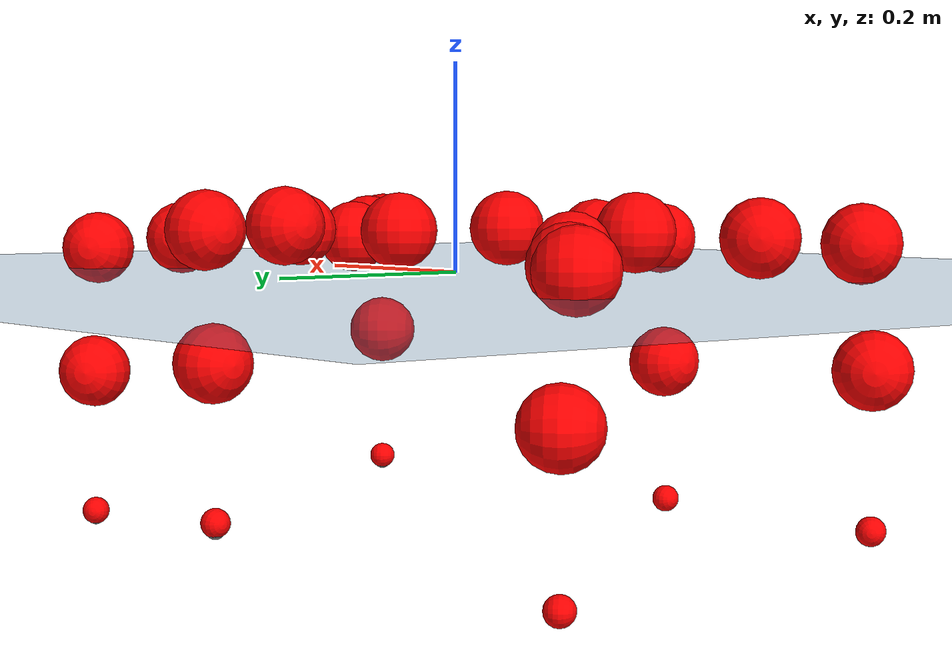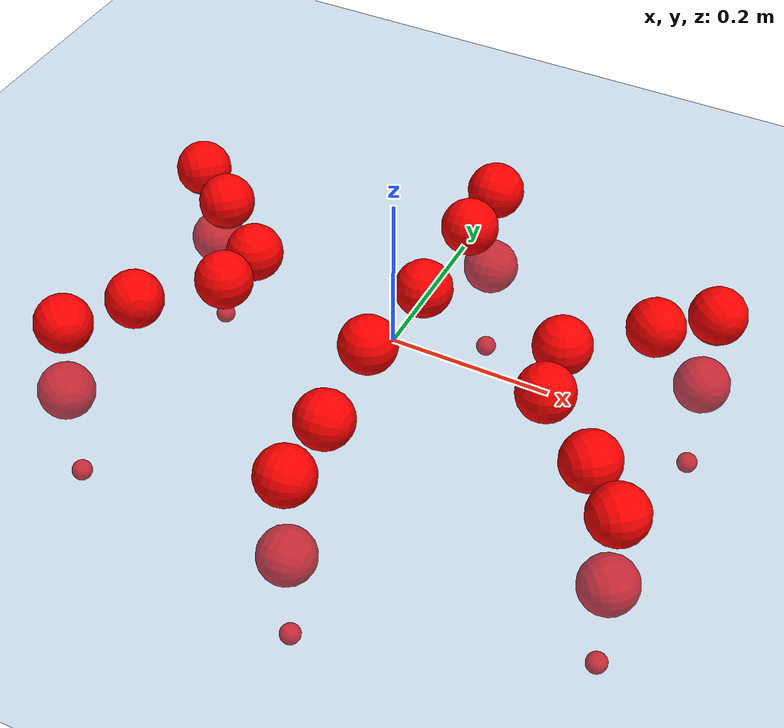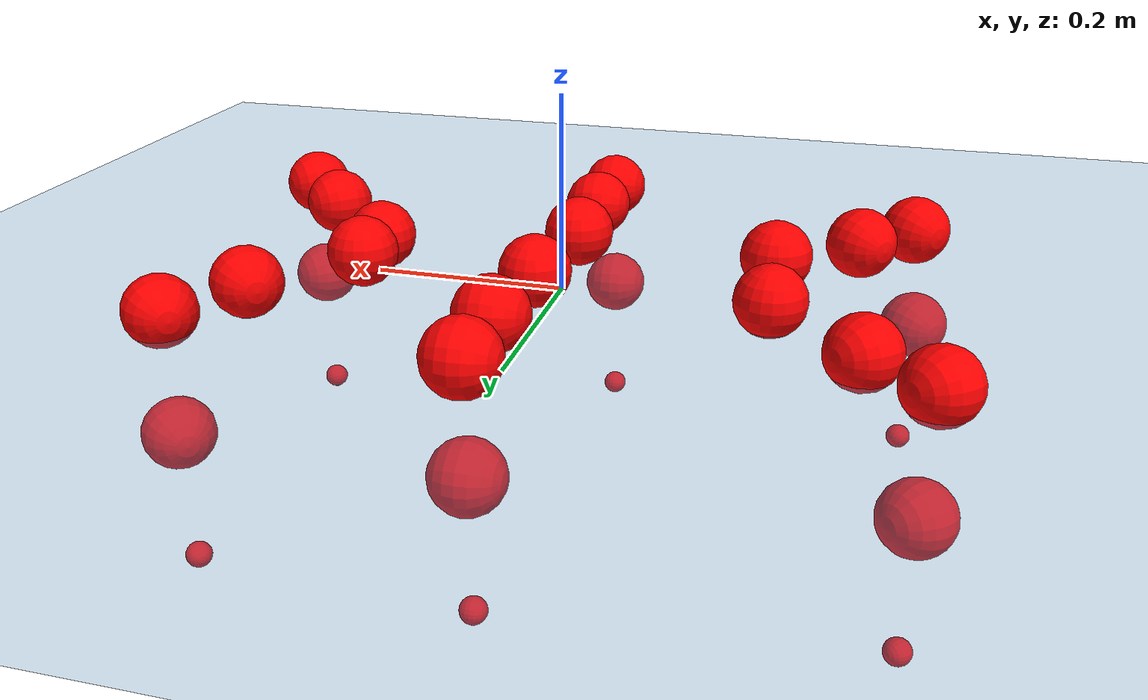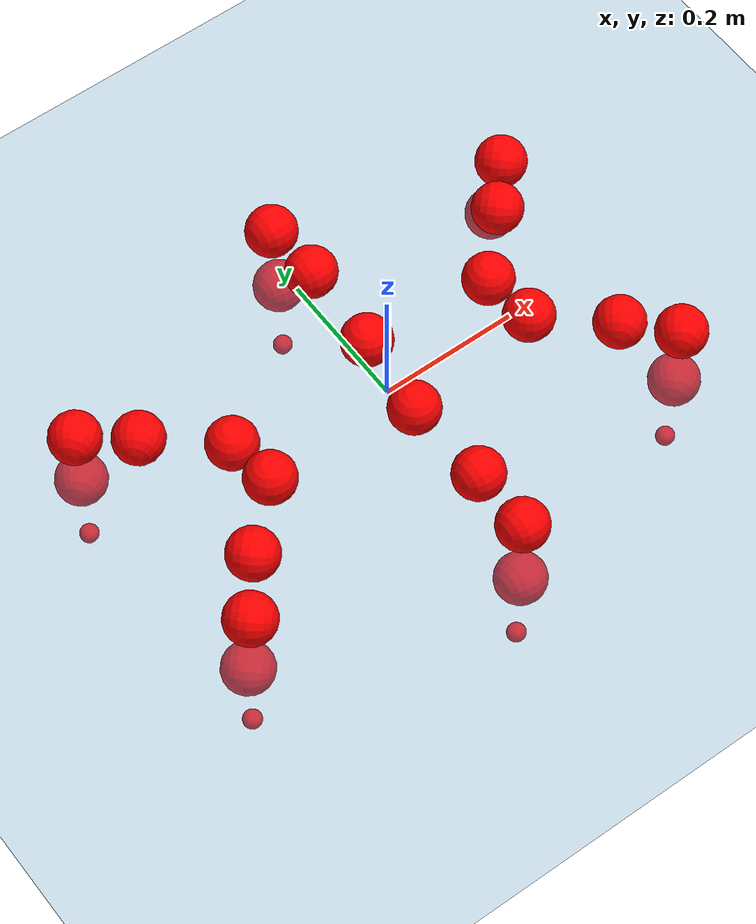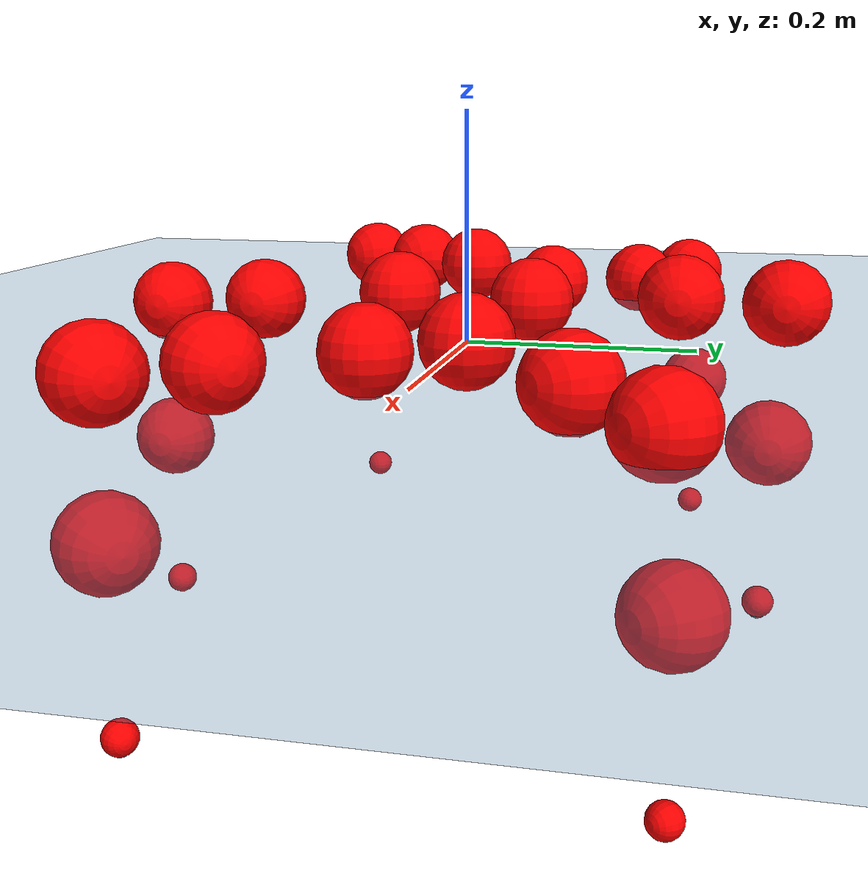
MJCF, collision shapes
<mujoco model="Golem">
  <compiler angle="radian" assetdir="assets" balanceinertia="true" inertiafromgeom="false"/>

  <option timestep="0.005" density="1.2" viscosity="2e-05"/>

  <size nkey="1"/>

  <visual>
    <quality shadowsize="8192"/>
    <map shadowclip="0.5"/>
  </visual>

  <default>
    <default class="/">
      <joint armature="0.01" damping="0.01" frictionloss="0.01"/>
      <geom contype="0" conaffinity="0" group="1" solref="-1000 -80"/>
      <site size="0.01 0.005 0.005" group="5"/>
      <general forcelimited="true" biastype="affine" gainprm="25" biasprm="0 -25 -0.5"/>
      <default class="visual">
        <geom type="mesh" group="2"/>
      </default>
      <default class="collision">
        <geom group="3"/>
      </default>
      <default class="foot">
        <geom size="0.01 0 0" condim="6" group="4" priority="1" solimp="0.015 1 0.01"/>
      </default>
      <default class="reward_collision_sphere">
        <geom group="5" rgba="1 0 0 1"/>
      </default>
    </default>
  </default>

  <asset>
    <texture type="skybox" colorspace="auto" name="//unnamed_texture_0" builtin="gradient" rgb1="0.95 0.95 0.95" rgb2="0.95 0.95 0.95" width="100" height="600"/>
    <texture type="2d" colorspace="auto" name="texplane" builtin="checker" rgb1="0.345 0.575 0.748" rgb2="0.345 0.575 0.748" markrgb="1 1 1" width="512" height="512"/>
    <material name="MatPlane" class="/" texture="texplane" texuniform="true" texrepeat="2 2" specular="0.9"/>
    <mesh name="body" class="/" file="body.stl" scale="0.001 0.001 0.001"/>
    <mesh name="coxa" class="/" file="coxa.stl" scale="0.001 0.001 0.001"/>
    <mesh name="femur" class="/" file="femur.stl" scale="0.001 0.001 0.001"/>
    <mesh name="tibia" class="/" file="tibia.stl" scale="0.001 0.001 0.001"/>
    <mesh name="tarsus" class="/" file="tarsus.stl" scale="0.001 0.001 0.001"/>
  </asset>

  <worldbody>
    <geom name="floor" class="/" size="100 100 0.125" type="plane" group="0" material="MatPlane"/>
    <light name="toplight_shadow" class="/" pos="0 0 5" dir="0.0990148 0.0990148 -0.990148" type="directional" ambient="0.04 0.04 0.04" diffuse="0.55 0.55 0.55" specular="0.12 0.12 0.12"/>
    <light name="toplight_fill" class="/" pos="0 0 5" dir="0.0990148 0.0990148 -0.990148" type="directional" castshadow="false" ambient="0.04 0.04 0.04" diffuse="0.3 0.3 0.3" specular="0.08 0.08 0.08"/>
    <body name="trunk" pos="-0.000327744 6.19715e-05 0.000930093" quat="1 -0.000332803 0.000282434 -0.000189483">
      <inertial pos="-0.00719928 -0.000973139 -0.0044936" quat="0.999752 0.0205137 -0.00485805 0.00718866" mass="2.32229" diaginertia="0.0308506 0.00272017 0.000536764"/>
      <joint name="//unnamed_joint_0" type="free"/>
      <geom name="//unnamed_geom_1" class="/" pos="0 0 0.0373751" quat="1 0 0 0" type="mesh" rgba="0.9 0.9 0.9 1" mesh="body"/>
      <site name="imu" class="/" pos="0.179095 0.00220672 0.107864" size="0.00901352"/>
      <camera name="track" class="/" pos="0 -1.58749 0" quat="0.707107 0.707107 0 0" mode="trackcom"/>
      <camera name="ego_camera" class="/" pos="0.172423 0 0.0583985" quat="-0.5 -0.5 0.5 0.5"/>
      <body name="coxa_RR" pos="-0.239049 -0.0654399 0.0410832" quat="0.38257 0.00062844 -0.000318488 -0.923926">
        <inertial pos="-0.00077343 0.00465104 -0.000634588" quat="0.999973 -0.000190578 -0.00149945 0.00722609" mass="0.153246" diaginertia="0.0436797 0.00351096 0.000691962"/>
        <joint name="coxa_joint_RR" class="/" pos="0 0 0" axis="-0.0544391 0.0228183 -0.998256" range="-3.02267 3.13662" armature="0.00855766" damping="0.0253358" frictionloss="0.00884154"/>
        <geom name="//unnamed_geom_2" class="/" type="mesh" rgba="0.2 0.2 0.2 1" mesh="coxa"/>
        <geom name="//unnamed_geom_3" class="reward_collision_sphere" size="0.0360541" pos="-0.0397899 0 0"/>
        <body name="femur_RR" pos="0.0697686 -0.00353344 -0.00450141" quat="0.497731 -0.500925 0.500821 0.500516">
          <inertial pos="-0.000942636 0.0013761 0.00495939" quat="0.999961 0.00376472 -0.00774968 0.00204215" mass="0.162645" diaginertia="0.0397714 0.00356863 0.000712166"/>
          <joint name="femur_joint_RR" class="/" pos="0 0 0" axis="0.00955114 0.0444169 -0.998967" range="-3.14833 3.09872" armature="0.00888371" damping="0.0171722" frictionloss="0.0074823"/>
          <geom name="//unnamed_geom_4" class="/" type="mesh" rgba="0.9 0.9 0.9 1" mesh="femur"/>
          <geom name="//unnamed_geom_5" class="reward_collision_sphere" size="0.0360541"/>
          <body name="tibia_RR" pos="0.00468593 -0.0886945 0.0116078" quat="0.000250786 1 0.000237326 -5.16081e-05">
            <inertial pos="-0.00168912 0.0105109 0.00146947" quat="0.998587 0.036405 -0.0191175 0.0336736" mass="0.146344" diaginertia="0.0358588 0.00302195 0.000659341"/>
            <joint name="tibia_joint_RR" class="/" pos="0 0 0" axis="-0.0305131 -0.00107177 0.999534" stiffness="0.00267076" range="-3.25932 3.15906" armature="0.00794275" damping="0" frictionloss="0.0101875"/>
            <geom name="//unnamed_geom_6" class="/" type="mesh" rgba="0.2 0.2 0.2 1" mesh="tibia"/>
            <geom name="//unnamed_geom_7" class="reward_collision_sphere" size="0.0360541"/>
            <body name="tarsus_RR" pos="0.111528 0.0107114 0.00453993" quat="0.999997 -0.000613059 0.0022853 0.000315355">
              <inertial pos="0.0814807 -0.000891347 0.00619753" quat="0.53562 0.47107 0.495399 0.495767" mass="0.13671" diaginertia="0.0416658 0.00304162 0.000777964"/>
              <joint name="tarsus_joint_RR" class="/" pos="0 0 0" axis="-0.00417721 -0.00798612 0.999959" stiffness="0.00463062" range="-3.02029 3.13606" armature="0.0098462" damping="0.00546678" frictionloss="0.0056313"/>
              <geom name="//unnamed_geom_8" class="/" type="mesh" rgba="0.9 0.9 0.9 1" mesh="tarsus"/>
              <geom name="foot_1" class="foot" size="0.00757919" pos="0.148549 0 0" quat="0 -0.707107 0 0.707107"/>
              <geom name="//unnamed_geom_10" class="reward_collision_sphere" size="0.0360541"/>
              <geom name="//unnamed_geom_11" class="reward_collision_sphere" size="0.0135203" pos="0.14258 0 0"/>
              <site name="foot_1" class="foot" pos="0.148549 0 0" quat="0 -0.707107 0 0.707107" size="0.00901352"/>
            </body>
          </body>
        </body>
      </body>
      <body name="coxa_RM" pos="-0.00152124 -0.101249 0.0409657" quat="0.709524 -0.00476229 0.0011798 -0.704664">
        <inertial pos="-0.00639071 0.00184866 0.00855381" quat="0.999999 -0.00017077 0.00019661 0.00168773" mass="0.148831" diaginertia="0.0417473 0.00283688 0.000666377"/>
        <joint name="coxa_joint_RM" class="/" pos="0 0 0" axis="0.00145585 -0.0031859 -0.999994" range="-3.1094 3.11121" armature="0.00560946" damping="0.0354423" frictionloss="0.00790445"/>
        <geom name="//unnamed_geom_12" class="/" type="mesh" rgba="0.2 0.2 0.2 1" mesh="coxa"/>
        <geom name="//unnamed_geom_13" class="reward_collision_sphere" size="0.0360541" pos="-0.0397899 0 0"/>
        <body name="femur_RM" pos="0.0834189 0.00869665 -0.00940264" quat="0.499746 -0.500285 0.500325 0.499644">
          <inertial pos="-0.010423 0.00514348 0.00156581" quat="0.999943 -0.00355832 0.00830844 0.0057487" mass="0.165043" diaginertia="0.051253 0.0035637 0.000858454"/>
          <joint name="femur_joint_RM" class="/" pos="0 0 0" axis="0.00309209 0.0336582 -0.999429" range="-3.16016 3.3322" armature="0.00853875" damping="0" frictionloss="0.0110475"/>
          <geom name="//unnamed_geom_14" class="/" type="mesh" rgba="0.9 0.9 0.9 1" mesh="femur"/>
          <geom name="//unnamed_geom_15" class="reward_collision_sphere" size="0.0360541"/>
          <body name="tibia_RM" pos="0.00541796 -0.0899713 0.00017418" quat="-0.00114458 0.999996 -0.00243335 0.000277079">
            <inertial pos="0.00538818 -0.0117288 0.00146998" quat="0.999669 0.000913748 0.0177172 -0.0186396" mass="0.155008" diaginertia="0.0437351 0.00340124 0.00070586"/>
            <joint name="tibia_joint_RM" class="/" pos="0 0 0" axis="0.0014746 -0.00189817 0.999997" stiffness="0.0102744" range="-3.10541 3.02733" armature="0.00972775" damping="0" frictionloss="0.00914759"/>
            <geom name="//unnamed_geom_16" class="/" type="mesh" rgba="0.2 0.2 0.2 1" mesh="tibia"/>
            <geom name="//unnamed_geom_17" class="reward_collision_sphere" size="0.0360541"/>
            <body name="tarsus_RM" pos="0.128172 0.00359582 -1.09998e-05" quat="1 0.000415309 -0.000714968 0.000112652">
              <inertial pos="0.0709347 -0.000872855 -0.00141775" quat="0.497589 0.507311 0.498768 0.496258" mass="0.124621" diaginertia="0.0400814 0.00301553 0.000575952"/>
              <joint name="tarsus_joint_RM" class="/" pos="0 0 0" axis="-0.00481933 -0.00330344 0.999983" range="-2.99476 3.29938" armature="0.0082983" damping="0.00654272" frictionloss="0.0122843"/>
              <geom name="//unnamed_geom_18" class="/" type="mesh" rgba="0.9 0.9 0.9 1" mesh="tarsus"/>
              <geom name="foot_2" class="foot" size="0.00710214" pos="0.148549 0 0" quat="0 -0.707107 0 0.707107"/>
              <geom name="//unnamed_geom_20" class="reward_collision_sphere" size="0.0360541"/>
              <geom name="//unnamed_geom_21" class="reward_collision_sphere" size="0.0135203" pos="0.14258 0 0"/>
              <site name="foot_2" class="foot" pos="0.148549 0 0" quat="0 -0.707107 0 0.707107" size="0.00901352"/>
            </body>
          </body>
        </body>
      </body>
      <body name="coxa_RF" pos="0.23711 -0.0579014 0.0287729" quat="0.923682 -0.000965277 0.000489325 -0.383157">
        <inertial pos="0.000622086 0.00992688 -0.00712082" quat="0.99884 -0.00482558 -0.0350215 0.0326874" mass="0.173706" diaginertia="0.0458498 0.00342302 0.000739391"/>
        <joint name="coxa_joint_RF" class="/" pos="0 0 0" axis="-0.0160375 0.0381199 -0.999144" stiffness="0.00995542" range="-3.34415 3.05308" armature="0.0127533" damping="0.0274834" frictionloss="0.00821615"/>
        <geom name="//unnamed_geom_22" class="/" type="mesh" rgba="0.2 0.2 0.2 1" mesh="coxa"/>
        <geom name="//unnamed_geom_23" class="reward_collision_sphere" size="0.0360541" pos="-0.0397899 0 0"/>
        <body name="femur_RF" pos="0.0789602 0.00408221 0.00490099" quat="0.500126 -0.500028 0.499955 0.49989">
          <inertial pos="0.0067845 -0.00976646 0.00184139" quat="0.999973 0.00412331 0.00566452 0.0022317" mass="0.141765" diaginertia="0.0371583 0.00278138 0.000600706"/>
          <joint name="femur_joint_RF" class="/" pos="0 0 0" axis="0.00073725 0.00275119 -0.999996" range="-3.1656 3.21659" armature="0.00906762" damping="0.00868357" frictionloss="0.0107602"/>
          <geom name="//unnamed_geom_24" class="/" type="mesh" rgba="0.9 0.9 0.9 1" mesh="femur"/>
          <geom name="//unnamed_geom_25" class="reward_collision_sphere" size="0.0360541"/>
          <body name="tibia_RF" pos="-0.00103021 -0.0811289 -0.00341995" quat="0.000440859 1 0.000346127 5.29294e-05">
            <inertial pos="0.000997779 0.000175333 0.0111831" quat="0.999064 -0.0357026 -0.0172127 0.0172969" mass="0.15168" diaginertia="0.0423617 0.00359301 0.000627206"/>
            <joint name="tibia_joint_RF" class="/" pos="0 0 0" axis="-0.0145932 0.000391653 0.999893" range="-3.17349 3.04807" armature="0.00973776" damping="0.0107883" frictionloss="0.00687162"/>
            <geom name="//unnamed_geom_26" class="/" type="mesh" rgba="0.2 0.2 0.2 1" mesh="tibia"/>
            <geom name="//unnamed_geom_27" class="reward_collision_sphere" size="0.0360541"/>
            <body name="tarsus_RF" pos="0.116432 -0.000766523 -0.0012106" quat="0.999994 -0.0011083 0.0017999 -0.0028563">
              <inertial pos="0.0832303 -0.00035522 -0.00178481" quat="0.49377 0.502596 0.505395 0.498162" mass="0.134698" diaginertia="0.0391327 0.00328613 0.000721141"/>
              <joint name="tarsus_joint_RF" class="/" pos="0 0 0" axis="0.00435566 -0.0248123 0.999683" stiffness="0.0237907" range="-3.2895 3.13497" armature="0.00933018" damping="0.0431825" frictionloss="0.00901994"/>
              <geom name="//unnamed_geom_28" class="/" type="mesh" rgba="0.9 0.9 0.9 1" mesh="tarsus"/>
              <geom name="foot_3" class="foot" size="0.00848739" pos="0.148549 0 0" quat="0 -0.707107 0 0.707107"/>
              <geom name="//unnamed_geom_30" class="reward_collision_sphere" size="0.0360541"/>
              <geom name="//unnamed_geom_31" class="reward_collision_sphere" size="0.0135203" pos="0.14258 0 0"/>
              <site name="foot_3" class="foot" pos="0.148549 0 0" quat="0 -0.707107 0 0.707107" size="0.00901352"/>
            </body>
          </body>
        </body>
      </body>
      <body name="coxa_LR" pos="-0.243405 0.0696352 0.0253631" quat="0.3822 0.00020803 -0.000652728 0.924079">
        <inertial pos="0.00674241 0.0074055 -0.000141367" quat="0.999365 -0.0289779 0.00982413 -0.0182711" mass="0.159139" diaginertia="0.0380756 0.00370325 0.000841024"/>
        <joint name="coxa_joint_LR" class="/" pos="0 0 0" axis="0.000686123 0.0045517 -0.999989" range="-3.04243 3.06753" armature="0.00771244" damping="0.00784208" frictionloss="0.0097279"/>
        <geom name="//unnamed_geom_32" class="/" type="mesh" rgba="0.2 0.2 0.2 1" mesh="coxa"/>
        <geom name="//unnamed_geom_33" class="reward_collision_sphere" size="0.0360541" pos="-0.0397899 0 0"/>
        <body name="femur_LR" pos="0.080861 0.00609727 -0.00649602" quat="0.499972 -0.500388 0.500004 0.499636">
          <inertial pos="0.000710399 0.0119158 -0.000200782" quat="0.999996 -0.00014216 -0.00163464 -0.00221413" mass="0.143437" diaginertia="0.0464509 0.00290775 0.000773872"/>
          <joint name="femur_joint_LR" class="/" pos="0 0 0" axis="0.000320663 -0.000545214 1" stiffness="0.00263576" range="-3.32319 3.11812" armature="0.00865182" damping="0.0671603" frictionloss="0.0091794"/>
          <geom name="//unnamed_geom_34" class="/" type="mesh" rgba="0.9 0.9 0.9 1" mesh="femur"/>
          <geom name="//unnamed_geom_35" class="reward_collision_sphere" size="0.0360541"/>
          <body name="tibia_LR" pos="0.000328938 -0.0806682 0.0113007" quat="-0.00229069 0.999997 0.000403394 6.7103e-05">
            <inertial pos="-0.00497039 0.00728949 0.00509571" quat="0.999061 -0.0220451 -0.00158412 -0.0372597" mass="0.14668" diaginertia="0.0447192 0.00332937 0.000671733"/>
            <joint name="tibia_joint_LR" class="/" pos="0 0 0" axis="0.00684515 -0.00707054 -0.999952" stiffness="0.00642395" range="-3.23148 2.95084" armature="0.0081086" damping="0.029543" frictionloss="0.0087592"/>
            <geom name="//unnamed_geom_36" class="/" type="mesh" rgba="0.2 0.2 0.2 1" mesh="tibia"/>
            <geom name="//unnamed_geom_37" class="reward_collision_sphere" size="0.0360541"/>
            <body name="tarsus_LR" pos="0.122173 0.00386778 0.0113541" quat="0.999994 0.00105486 -0.00160086 0.00275077">
              <inertial pos="0.0789401 0.0104845 0.00920645" quat="0.508943 0.501299 0.488328 0.50121" mass="0.152396" diaginertia="0.0402113 0.00338206 0.000770251"/>
              <joint name="tarsus_joint_LR" class="/" pos="0 0 0" axis="-0.0455587 -0.00580176 -0.998945" stiffness="0.046113" range="-3.07522 3.24148" armature="0.0119957" damping="0.045444" frictionloss="0.0113276"/>
              <geom name="//unnamed_geom_38" class="/" type="mesh" rgba="0.9 0.9 0.9 1" mesh="tarsus"/>
              <geom name="foot_4" class="foot" size="0.00507938" pos="0.148549 0 0" quat="0.707107 0 -0.707107 0"/>
              <geom name="//unnamed_geom_40" class="reward_collision_sphere" size="0.0360541"/>
              <geom name="//unnamed_geom_41" class="reward_collision_sphere" size="0.0135203" pos="0.14258 0 0"/>
              <site name="foot_4" class="foot" pos="0.148549 0 0" quat="0.707107 0 -0.707107 0" size="0.00901352"/>
            </body>
          </body>
        </body>
      </body>
      <body name="coxa_LM" pos="0.0111646 0.0987985 0.0398608" quat="0.70714 0.000125542 -1.10166e-05 0.707074">
        <inertial pos="0.00249854 0.0066113 -0.00237657" quat="0.999038 0.0099622 0.0067461 0.0421715" mass="0.138614" diaginertia="0.0346202 0.00272501 0.000591127"/>
        <joint name="coxa_joint_LM" class="/" pos="0 0 0" axis="0.0565947 -0.00656 -0.998376" stiffness="0.0113929" range="-3.09981 3.12445" armature="0.00825743" damping="0.00374117" frictionloss="0.00662146"/>
        <geom name="//unnamed_geom_42" class="/" type="mesh" rgba="0.2 0.2 0.2 1" mesh="coxa"/>
        <geom name="//unnamed_geom_43" class="reward_collision_sphere" size="0.0360541" pos="-0.0397899 0 0"/>
        <body name="femur_LM" pos="0.0867024 -0.00231942 0.00670481" quat="0.500131 -0.500235 0.49985 0.499783">
          <inertial pos="-0.00656661 -0.000635806 0.00100241" quat="0.999371 0.0215884 0.0149057 0.0238522" mass="0.127877" diaginertia="0.0417273 0.00248959 0.000631052"/>
          <joint name="femur_joint_LM" class="/" pos="0 0 0" axis="0.000127407 0.000145178 1" range="-3.16667 3.16553" armature="0.00842282" damping="0" frictionloss="0.0118368"/>
          <geom name="//unnamed_geom_44" class="/" type="mesh" rgba="0.9 0.9 0.9 1" mesh="femur"/>
          <geom name="//unnamed_geom_45" class="reward_collision_sphere" size="0.0360541"/>
          <body name="tibia_LM" pos="0.00247704 -0.0860222 0.00297954" quat="-0.00301108 0.999992 0.0017903 -0.00202184">
            <inertial pos="-0.00558807 0.00242784 0.00858929" quat="0.998939 0.0164242 0.0361278 -0.0233476" mass="0.142768" diaginertia="0.0399532 0.00270298 0.000685982"/>
            <joint name="tibia_joint_LM" class="/" pos="0 0 0" axis="0.0221763 0.00510286 -0.999741" stiffness="0.0480829" range="-3.16112 3.14473" armature="0.00840537" damping="0" frictionloss="0.0125033"/>
            <geom name="//unnamed_geom_46" class="/" type="mesh" rgba="0.2 0.2 0.2 1" mesh="tibia"/>
            <geom name="//unnamed_geom_47" class="reward_collision_sphere" size="0.0360541"/>
            <body name="tarsus_LM" pos="0.118468 -0.00825417 0.0019684" quat="0.999991 -0.00108536 0.000853428 -0.00413092">
              <inertial pos="0.0777987 0.00110467 -0.00445312" quat="0.527506 0.502707 0.462686 0.50492" mass="0.128562" diaginertia="0.034668 0.00321082 0.000668348"/>
              <joint name="tarsus_joint_LM" class="/" pos="0 0 0" axis="-0.0548397 0.00976124 -0.998447" range="-3.11579 3.11427" armature="0.00842448" damping="0.0354999" frictionloss="0.00489695"/>
              <geom name="//unnamed_geom_48" class="/" type="mesh" rgba="0.9 0.9 0.9 1" mesh="tarsus"/>
              <geom name="foot_5" class="foot" size="0.00888471" pos="0.148549 0 0" quat="0.707107 0 -0.707107 0"/>
              <geom name="//unnamed_geom_50" class="reward_collision_sphere" size="0.0360541"/>
              <geom name="//unnamed_geom_51" class="reward_collision_sphere" size="0.0135203" pos="0.14258 0 0"/>
              <site name="foot_5" class="foot" pos="0.148549 0 0" quat="0.707107 0 -0.707107 0" size="0.00901352"/>
            </body>
          </body>
        </body>
      </body>
      <body name="coxa_LF" pos="0.226528 0.0719702 0.0370306" quat="0.923869 0.000173561 1.12677e-05 0.382708">
        <inertial pos="0.00203042 0.00118116 -0.00859604" quat="0.999397 -0.00738948 0.0337485 0.00348026" mass="0.153258" diaginertia="0.0448517 0.00271724 0.000713563"/>
        <joint name="coxa_joint_LF" class="/" pos="0 0 0" axis="0.0373877 0.0114991 -0.999235" range="-3.14455 3.12525" armature="0.0128191" damping="0.00769034" frictionloss="0.00371633"/>
        <geom name="//unnamed_geom_52" class="/" type="mesh" rgba="0.2 0.2 0.2 1" mesh="coxa"/>
        <geom name="//unnamed_geom_53" class="reward_collision_sphere" size="0.0360541" pos="-0.0397899 0 0"/>
        <body name="femur_LF" pos="0.0817572 0.00350565 -0.00822214" quat="0.500067 -0.500006 0.500084 0.499844">
          <inertial pos="0.0114036 -0.00233443 -0.011859" quat="0.999975 0.00590533 -0.00370857 -0.000661923" mass="0.156596" diaginertia="0.0369425 0.00325201 0.000704297"/>
          <joint name="femur_joint_LF" class="/" pos="0 0 0" axis="0.00544792 0.0046062 0.999975" range="-3.1041 3.10816" armature="0.00648294" damping="0" frictionloss="0.00865321"/>
          <geom name="//unnamed_geom_54" class="/" type="mesh" rgba="0.9 0.9 0.9 1" mesh="femur"/>
          <geom name="//unnamed_geom_55" class="reward_collision_sphere" size="0.0360541"/>
          <body name="tibia_LF" pos="0.0102656 -0.085817 0.00584634" quat="0.00184415 0.999997 0.000773124 0.00168313">
            <inertial pos="0.00338853 0.0112224 -0.00344962" quat="0.999998 0.00135517 -0.00127694 0.000633169" mass="0.162634" diaginertia="0.0535683 0.00358068 0.000761366"/>
            <joint name="tibia_joint_LF" class="/" pos="0 0 0" axis="0.00804035 0.00866673 -0.99993" stiffness="0.00696672" range="-3.17255 3.15431" armature="0.00586419" damping="0.0325321" frictionloss="0.00981067"/>
            <geom name="//unnamed_geom_56" class="/" type="mesh" rgba="0.2 0.2 0.2 1" mesh="tibia"/>
            <geom name="//unnamed_geom_57" class="reward_collision_sphere" size="0.0360541"/>
            <body name="tarsus_LF" pos="0.12495 0.00211512 -0.0105636" quat="1 2.32052e-06 -0.000102587 6.16354e-05">
              <inertial pos="0.0802252 -0.00464457 -0.000452515" quat="0.515903 0.480113 0.492847 0.510331" mass="0.18241" diaginertia="0.0453071 0.00394461 0.000743951"/>
              <joint name="tarsus_joint_LF" class="/" pos="0 0 0" axis="0.00766656 0.0131017 -0.999885" range="-3.14883 3.1253" armature="0.00527896" damping="0.047832" frictionloss="0.0139464"/>
              <geom name="//unnamed_geom_58" class="/" type="mesh" rgba="0.9 0.9 0.9 1" mesh="tarsus"/>
              <geom name="foot_6" class="foot" size="0.00818928" pos="0.148549 0 0" quat="0.707107 0 -0.707107 0"/>
              <geom name="//unnamed_geom_60" class="reward_collision_sphere" size="0.0360541"/>
              <geom name="//unnamed_geom_61" class="reward_collision_sphere" size="0.0135203" pos="0.14258 0 0"/>
              <site name="foot_6" class="foot" pos="0.148549 0 0" quat="0.707107 0 -0.707107 0" size="0.00901352"/>
            </body>
          </body>
        </body>
      </body>
    </body>
  </worldbody>

  <contact>
    <pair class="/" geom1="floor" geom2="foot_1" name="//unnamed_contact_0"/>
    <pair class="/" geom1="floor" geom2="foot_2" name="//unnamed_contact_1"/>
    <pair class="/" geom1="floor" geom2="foot_3" name="//unnamed_contact_2"/>
    <pair class="/" geom1="floor" geom2="foot_4" name="//unnamed_contact_3"/>
    <pair class="/" geom1="floor" geom2="foot_5" name="//unnamed_contact_4"/>
    <pair class="/" geom1="floor" geom2="foot_6" name="//unnamed_contact_5"/>
  </contact>

  <actuator>
    <general name="coxa_joint_RR" class="/" joint="coxa_joint_RR" forcerange="-7.15194 7.15194" gainprm="17.5724" biasprm="0 -17.5724 -0.469863"/>
    <general name="femur_joint_RR" class="/" joint="femur_joint_RR" forcerange="-6.28884 6.28884" gainprm="17.5724" biasprm="0 -17.5724 -0.469863"/>
    <general name="tibia_joint_RR" class="/" joint="tibia_joint_RR" forcerange="-6.94175 6.94175" gainprm="17.5724" biasprm="0 -17.5724 -0.469863"/>
    <general name="tarsus_joint_RR" class="/" joint="tarsus_joint_RR" forcerange="-4.39697 4.39697" gainprm="17.5724" biasprm="0 -17.5724 -0.469863"/>
    <general name="coxa_joint_RM" class="/" joint="coxa_joint_RM" forcerange="-6.84882 6.84882" gainprm="17.5724" biasprm="0 -17.5724 -0.469863"/>
    <general name="femur_joint_RM" class="/" joint="femur_joint_RM" forcerange="-6.65756 6.65756" gainprm="17.5724" biasprm="0 -17.5724 -0.469863"/>
    <general name="tibia_joint_RM" class="/" joint="tibia_joint_RM" forcerange="-6.91874 6.91874" gainprm="17.5724" biasprm="0 -17.5724 -0.469863"/>
    <general name="tarsus_joint_RM" class="/" joint="tarsus_joint_RM" forcerange="-3.98547 3.98547" gainprm="17.5724" biasprm="0 -17.5724 -0.469863"/>
    <general name="coxa_joint_RF" class="/" joint="coxa_joint_RF" forcerange="-5.4705 5.4705" gainprm="17.5724" biasprm="0 -17.5724 -0.469863"/>
    <general name="femur_joint_RF" class="/" joint="femur_joint_RF" forcerange="-9.03412 9.03412" gainprm="17.5724" biasprm="0 -17.5724 -0.469863"/>
    <general name="tibia_joint_RF" class="/" joint="tibia_joint_RF" forcerange="-5.16917 5.16917" gainprm="17.5724" biasprm="0 -17.5724 -0.469863"/>
    <general name="tarsus_joint_RF" class="/" joint="tarsus_joint_RF" forcerange="-8.13167 8.13167" gainprm="17.5724" biasprm="0 -17.5724 -0.469863"/>
    <general name="coxa_joint_LR" class="/" joint="coxa_joint_LR" forcerange="-7.84404 7.84404" gainprm="17.5724" biasprm="0 -17.5724 -0.469863"/>
    <general name="femur_joint_LR" class="/" joint="femur_joint_LR" forcerange="-7.01659 7.01659" gainprm="17.5724" biasprm="0 -17.5724 -0.469863"/>
    <general name="tibia_joint_LR" class="/" joint="tibia_joint_LR" forcerange="-6.46945 6.46945" gainprm="17.5724" biasprm="0 -17.5724 -0.469863"/>
    <general name="tarsus_joint_LR" class="/" joint="tarsus_joint_LR" forcerange="-7.86189 7.86189" gainprm="17.5724" biasprm="0 -17.5724 -0.469863"/>
    <general name="coxa_joint_LM" class="/" joint="coxa_joint_LM" forcerange="-6.55487 6.55487" gainprm="17.5724" biasprm="0 -17.5724 -0.469863"/>
    <general name="femur_joint_LM" class="/" joint="femur_joint_LM" forcerange="-7.98595 7.98595" gainprm="17.5724" biasprm="0 -17.5724 -0.469863"/>
    <general name="tibia_joint_LM" class="/" joint="tibia_joint_LM" forcerange="-7.23382 7.23382" gainprm="17.5724" biasprm="0 -17.5724 -0.469863"/>
    <general name="tarsus_joint_LM" class="/" joint="tarsus_joint_LM" forcerange="-6.64088 6.64088" gainprm="17.5724" biasprm="0 -17.5724 -0.469863"/>
    <general name="coxa_joint_LF" class="/" joint="coxa_joint_LF" forcerange="-8.72187 8.72187" gainprm="17.5724" biasprm="0 -17.5724 -0.469863"/>
    <general name="femur_joint_LF" class="/" joint="femur_joint_LF" forcerange="-7.85012 7.85012" gainprm="17.5724" biasprm="0 -17.5724 -0.469863"/>
    <general name="tibia_joint_LF" class="/" joint="tibia_joint_LF" forcerange="-5.32745 5.32745" gainprm="17.5724" biasprm="0 -17.5724 -0.469863"/>
    <general name="tarsus_joint_LF" class="/" joint="tarsus_joint_LF" forcerange="-7.14655 7.14655" gainprm="17.5724" biasprm="0 -17.5724 -0.469863"/>
  </actuator>

  <sensor>
    <gyro site="imu" name="imu_angular_velocity"/>
    <velocimeter site="imu" name="imu_linear_velocity"/>
    <framelinvel objtype="site" objname="foot_1" name="foot_1_global_linear_velocity"/>
    <framelinvel objtype="site" objname="foot_2" name="foot_2_global_linear_velocity"/>
    <framelinvel objtype="site" objname="foot_3" name="foot_3_global_linear_velocity"/>
    <framelinvel objtype="site" objname="foot_4" name="foot_4_global_linear_velocity"/>
    <framelinvel objtype="site" objname="foot_5" name="foot_5_global_linear_velocity"/>
    <framelinvel objtype="site" objname="foot_6" name="foot_6_global_linear_velocity"/>
  </sensor>

  <keyframe>
    <key name="home" qpos="0 0 0.1457 1 0 0 0 0 0 0 0 0 0 0 0 0 0 0 0 0 0 0 0 0 0 0 0 0 0 0 0"/>
  </keyframe>
</mujoco>
